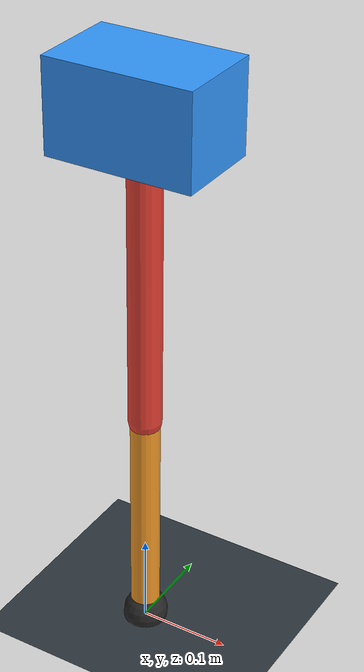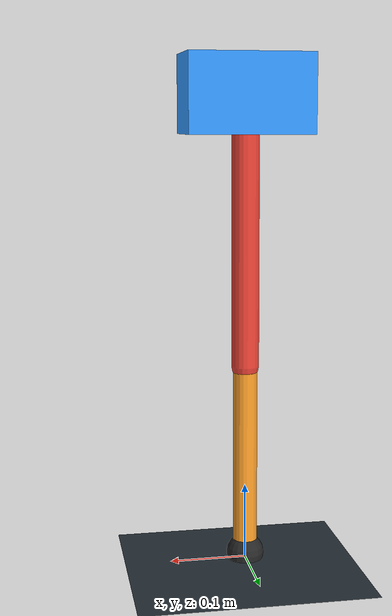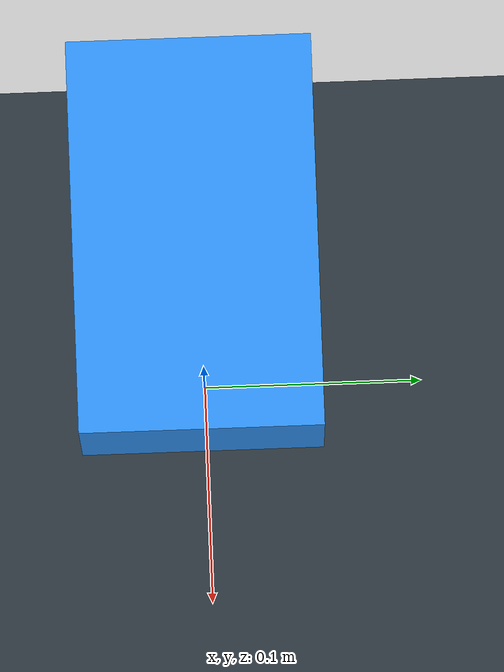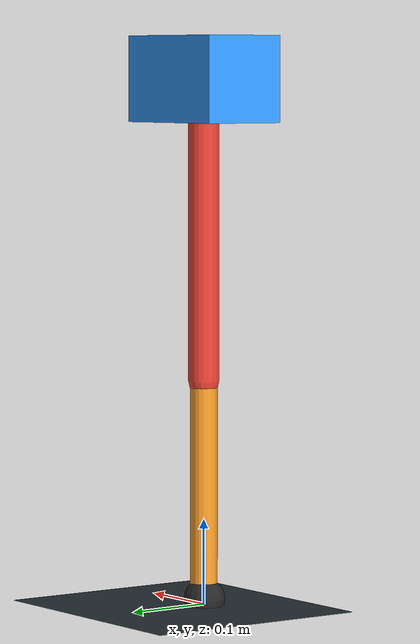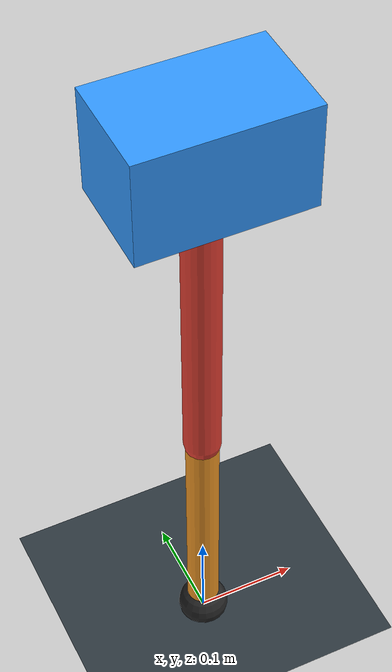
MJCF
<mujoco model="single_axis_two_bar">
  <compiler angle="radian" inertiafromgeom="true"/>
  <option timestep="0.001" integrator="implicitfast" gravity="0 0 -9.81"/>
  <default>
    <joint damping="0.08"/>
    <geom friction="1.2 0.01 0.0001" condim="3"/>
  </default>
  <worldbody>
    <geom name="floor" type="plane" size="5 5 0.1" rgba="0.18 0.22 0.25 1"/>
    <body name="carriage" pos="0 0 0.6121343662447699">
      <joint name="pole_slide" type="slide" axis="0 0 1"/>
      <geom name="payload" type="box" size="0.08 0.05 0.05" mass="2.564651248725914" rgba="0.2 0.6 1 1"/>
      <body name="thigh" pos="0 0 0">
        <joint name="hip" type="hinge" axis="0 1 0"/>
        <geom name="thigh_link" type="capsule" fromto="0 0 0 0 0 -0.34998457620044" size="0.018" mass="0.24936863518096375" rgba="0.9 0.25 0.2 1"/>
        <body name="shank" pos="0 0 -0.34998457620044">
          <joint name="knee" type="hinge" axis="0 1 0"/>
          <geom name="shank_link" type="capsule" fromto="0 0 0 0 0 -0.2553085848766425" size="0.016" mass="0.18191074032990923" rgba="0.95 0.6 0.15 1"/>
          <geom name="foot" type="sphere" pos="0 0 -0.2553085848766425" size="0.025" mass="0.03" rgba="0.15 0.15 0.15 1"/>
          <site name="toe" pos="0 0 -0.2553085848766425" size="0.008"/>
        </body>
      </body>
    </body>
  </worldbody>
  <actuator>
    <motor name="hip_motor" joint="hip" ctrlrange="-32.329144297933176 32.329144297933176"/>
    <motor name="knee_motor" joint="knee" ctrlrange="-102.127335822023 102.127335822023"/>
  </actuator>
</mujoco>
